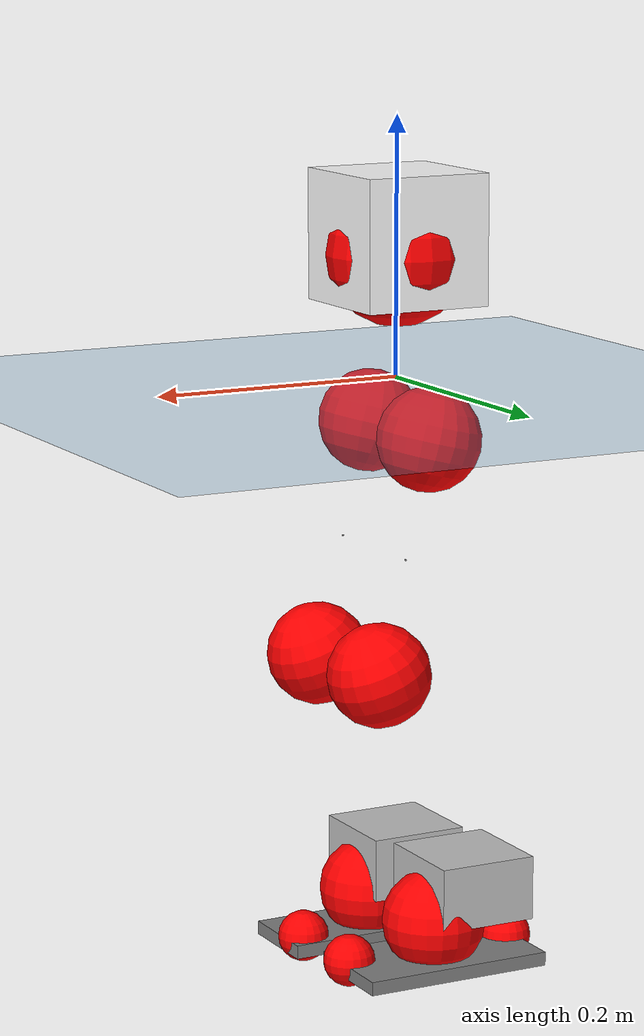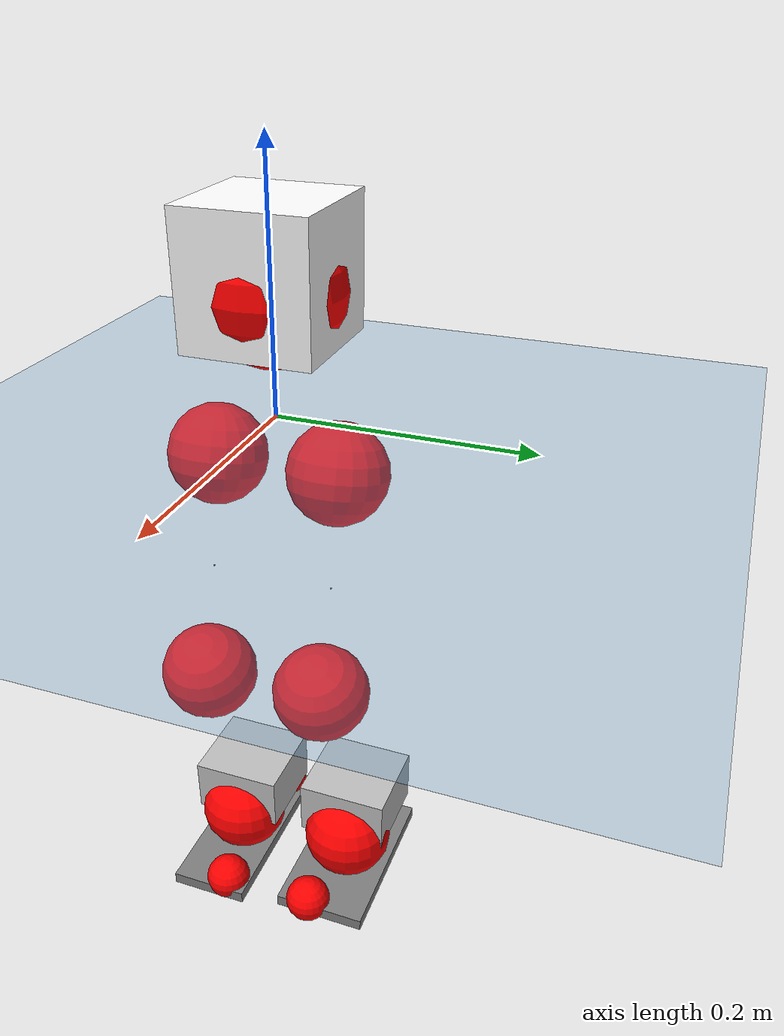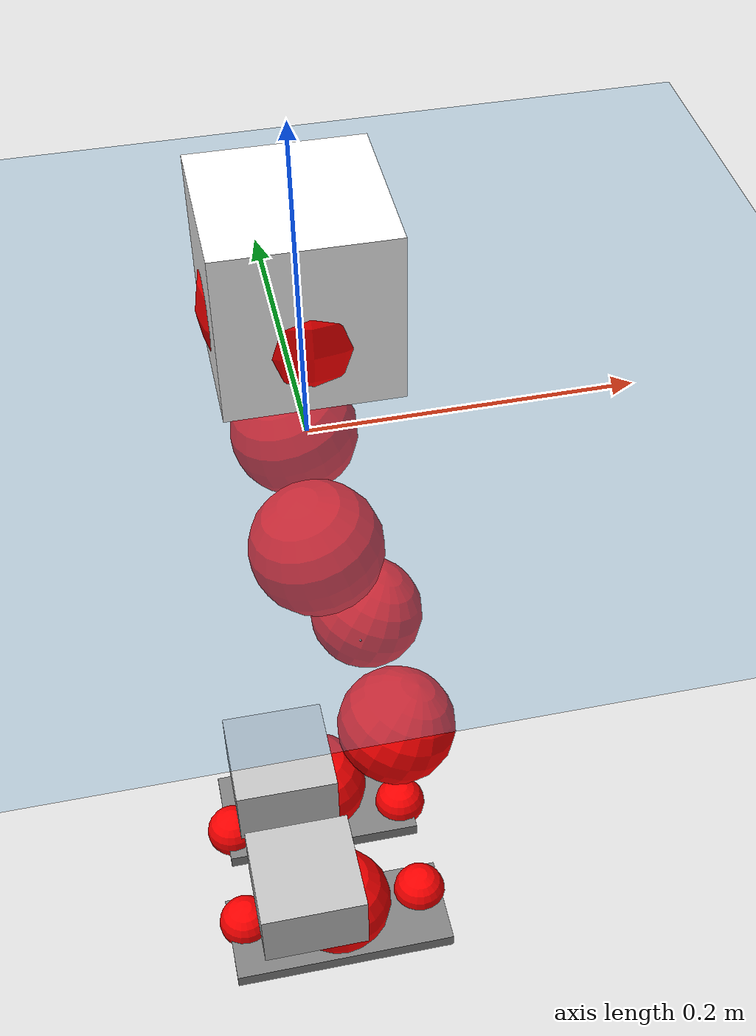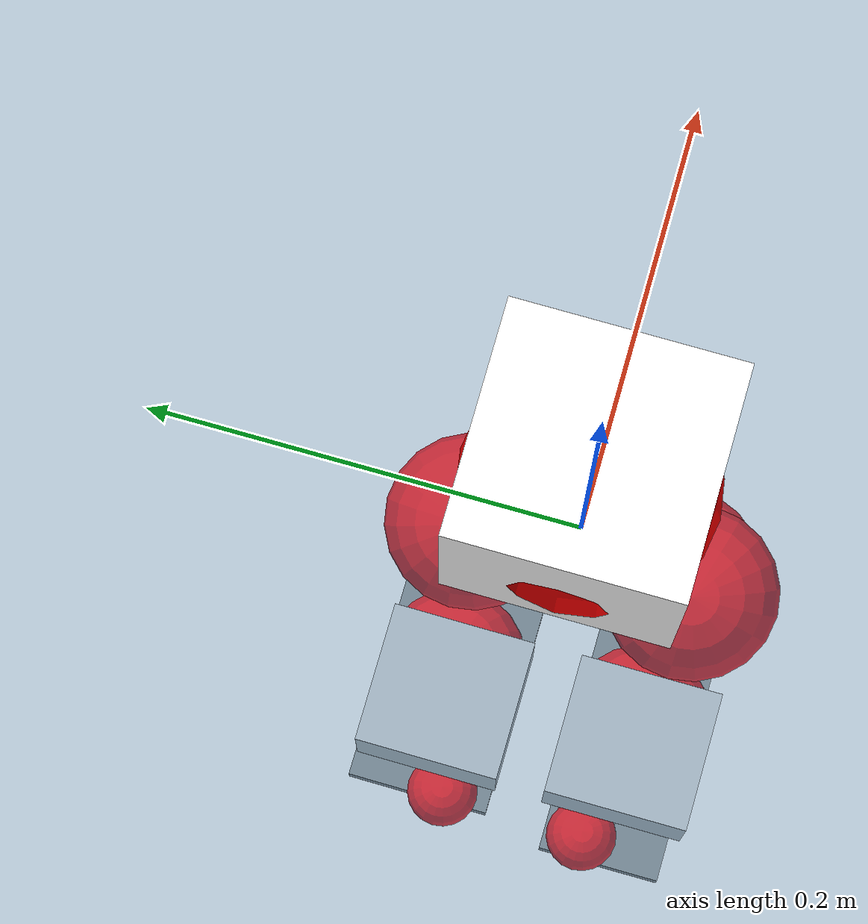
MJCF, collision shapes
<mujoco model="pi_12dof_release_v1">
  <compiler angle="radian" assetdir="assets" balanceinertia="true" inertiafromgeom="false"/>

  <option timestep="0.005" density="1.2" viscosity="2e-05"/>

  <size nkey="1"/>

  <visual>
    <quality shadowsize="8192"/>
    <map shadowclip="0.5"/>
  </visual>

  <default>
    <default class="/">
      <joint armature="0.01" damping="0.01" frictionloss="0.01"/>
      <geom contype="0" conaffinity="0" group="1" solref="-1000 -80"/>
      <site size="0.01 0.005 0.005" group="5"/>
      <general forcelimited="true" biastype="affine" gainprm="20" biasprm="0 -20 -0.5"/>
      <default class="foot">
        <geom size="0.0845 0.036 0.005" type="box" condim="6" group="4" priority="1" friction="0.9 0.2 0.2" solimp="0.015 1 0.005"/>
      </default>
      <default class="reward_collision_sphere">
        <geom group="5" rgba="1 0 0 1"/>
      </default>
    </default>
  </default>

  <asset>
    <texture type="skybox" colorspace="auto" name="//unnamed_texture_0" builtin="gradient" rgb1="0.95 0.95 0.95" rgb2="0.95 0.95 0.95" width="100" height="600"/>
    <texture type="2d" colorspace="auto" name="texplane" builtin="checker" rgb1="0.345 0.575 0.748" rgb2="0.345 0.575 0.748" markrgb="1 1 1" width="512" height="512"/>
    <material name="MatPlane" class="/" texture="texplane" texuniform="true" texrepeat="2 2" specular="0.9"/>
    <mesh name="baselink_1" class="/" file="baselink_1.STL"/>
    <mesh name="r_hip_pitch_link" class="/" file="r_hip_pitch_link.STL"/>
    <mesh name="r_hip_roll_link" class="/" file="r_hip_roll_link.STL"/>
    <mesh name="r_thigh_link" class="/" file="r_thigh_link.STL"/>
    <mesh name="r_calf_link" class="/" file="r_calf_link.STL"/>
    <mesh name="r_ankle_pitch_link" class="/" file="r_ankle_pitch_link.STL"/>
    <mesh name="r_ankle_roll_link" class="/" file="r_ankle_roll_link.STL"/>
    <mesh name="l_hip_pitch_link" class="/" file="l_hip_pitch_link.STL"/>
    <mesh name="l_hip_roll_link" class="/" file="l_hip_roll_link.STL"/>
    <mesh name="l_thigh_link" class="/" file="l_thigh_link.STL"/>
    <mesh name="l_calf_link" class="/" file="l_calf_link.STL"/>
    <mesh name="l_ankle_pitch_link" class="/" file="l_ankle_pitch_link.STL"/>
    <mesh name="l_ankle_roll_link" class="/" file="l_ankle_roll_link.STL"/>
  </asset>

  <worldbody>
    <geom name="floor" class="/" size="100 100 0.125" type="plane" group="0" material="MatPlane"/>
    <light name="toplight_shadow" class="/" pos="0 0 5" dir="0.0990148 0.0990148 -0.990148" type="directional" ambient="0.04 0.04 0.04" diffuse="0.55 0.55 0.55" specular="0.12 0.12 0.12"/>
    <light name="toplight_fill" class="/" pos="0 0 5" dir="0.0990148 0.0990148 -0.990148" type="directional" castshadow="false" ambient="0.04 0.04 0.04" diffuse="0.3 0.3 0.3" specular="0.08 0.08 0.08"/>
    <body name="trunk" pos="-0.000936073 0.000211806 0.00184948" quat="0.999999 0.000343231 0.00082747 -0.000846647">
      <inertial pos="0.00210437 -0.00199376 0.0512293" quat="0.697045 0.00967339 0.0093141 0.716902" mass="2.21838" diaginertia="0.0109509 0.00126081 0.0167214"/>
      <joint name="//unnamed_joint_0" type="free"/>
      <geom name="//unnamed_geom_1" class="/" type="mesh" density="0" rgba="1 1 1 1" mesh="baselink_1"/>
      <geom name="//unnamed_geom_2" class="/" size="0.0504067 0.0504067 0.0504067" pos="0 0 0.105905" type="box" rgba="1 1 1 1"/>
      <geom name="//unnamed_geom_3" class="reward_collision_sphere" size="0.0554474" pos="0 0 0.092667"/>
      <site name="imu" class="/" pos="0.00746587 -0.000519153 -0.00760571" size="0.0100813"/>
      <camera name="track" class="/" pos="0 -1.35276 0" quat="0.707107 0.707107 0 0" mode="trackcom"/>
      <camera name="ego_camera" class="/" pos="0.0768157 0 0.238287" quat="-0.5 -0.5 0.5 0.5"/>
      <body name="r_hip_pitch_link" pos="-0.00197457 -0.0180079 -0.0460343" quat="0.992191 2.90805e-05 -0.124725 5.93833e-05">
        <inertial pos="0.000780999 -0.0407047 -0.000182771" quat="-0.0183227 0.706019 -0.0296385 0.707335" mass="0.390211" diaginertia="0.000121973 1.34078e-05 0.000336032"/>
        <joint name="r_hip_pitch_joint" class="/" pos="0 0 0" axis="0.00549504 -0.999976 0.00416871" stiffness="0.0099232" range="-1.77232 1.22705" armature="0.00907497" damping="0.0137738" frictionloss="0.00890417"/>
        <geom name="//unnamed_geom_4" class="/" type="mesh" density="0" rgba="0.75294 0.75294 0.75294 1" mesh="r_hip_pitch_link"/>
        <geom name="//unnamed_geom_5" class="/" size="0.000504067 0.000504067 0.000504067" type="box" rgba="0.75294 0.75294 0.75294 1"/>
        <body name="r_hip_roll_link" pos="-0.00254222 -0.0370932 0.00255942" quat="1 -0.000171121 0.000701723 0.000594621">
          <inertial pos="-0.00298746 -0.000414481 -0.0785547" quat="0.714133 -0.0734607 -0.0831568 0.691161" mass="0.389265" diaginertia="0.000382892 3.94935e-05 0.000538298"/>
          <joint name="r_hip_roll_joint" class="/" pos="0 0 0" axis="-0.999905 0.0077215 0.0114578" stiffness="0.00180125" range="-0.136108 0.49554" armature="0.00864409" damping="0.00670474" frictionloss="0.010717"/>
          <geom name="//unnamed_geom_6" class="/" type="mesh" density="0" rgba="0.75294 0.75294 0.75294 1" mesh="r_hip_roll_link"/>
          <geom name="//unnamed_geom_7" class="/" size="0.000504067 0.000504067 0.000504067" type="box" rgba="0.75294 0.75294 0.75294 1"/>
          <geom name="//unnamed_geom_8" class="reward_collision_sphere" size="0.0403254"/>
          <body name="r_thigh_link" pos="0.00154476 0.00190258 -0.0929831" quat="1 0.000289076 0.000234782 2.73221e-05">
            <inertial pos="-0.000502317 0.00146134 -0.0656183" quat="0.737259 0.67561 0.000455634 0.000238598" mass="0.116392" diaginertia="0.000137031 1.32573e-05 0.000236767"/>
            <joint name="r_thigh_joint" class="/" pos="0 0 0" axis="-0.00158748 0.00313136 -0.999994" stiffness="0.00884055" range="-0.35609 0.586556" armature="0.0108481" damping="0" frictionloss="0.0114276"/>
            <geom name="//unnamed_geom_9" class="/" type="mesh" density="0" rgba="0.75294 0.75294 0.75294 1" mesh="r_thigh_link"/>
            <geom name="//unnamed_geom_10" class="/" size="0.000504067 0.000504067 0.000504067" type="box" rgba="0.75294 0.75294 0.75294 1"/>
            <body name="r_calf_link" pos="-0.000711767 0.0005194 -0.0946154" quat="0.947619 -4.45179e-05 0.319404 -7.99317e-05">
              <inertial pos="-0.00328127 -0.00106288 -0.0952691" quat="0.999995 -0.00135136 0.00227281 0.00150814" mass="0.841847" diaginertia="0.00383392 0.000503545 0.000684157"/>
              <joint name="r_calf_joint" class="/" pos="0 0 0" axis="0.0121062 -0.999914 -0.00502307" range="-1.64861 0.693616" armature="0.00864275" damping="0.00225567" frictionloss="0.00955824"/>
              <geom name="//unnamed_geom_11" class="/" type="mesh" density="0" rgba="0.75294 0.75294 0.75294 1" mesh="r_calf_link"/>
              <geom name="//unnamed_geom_12" class="/" size="0.000504067 0.000504067 0.000504067" type="box" rgba="0.75294 0.75294 0.75294 1"/>
              <geom name="//unnamed_geom_13" class="reward_collision_sphere" size="0.0403254"/>
              <body name="r_ankle_pitch_link" pos="0.00285772 -0.00195359 -0.187226" quat="0.98025 0.000638087 -0.197759 -0.000119683">
                <inertial pos="0.00647455 0.00146842 -0.00303327" quat="-0.00400341 0.714026 -0.0101585 0.700034" mass="0.185779" diaginertia="0.000334237 3.04818e-05 0.000495649"/>
                <joint name="r_ankle_pitch_joint" class="/" pos="0 0 0" axis="0.00218305 -0.999912 -0.013083" range="-1.25828 0.557224" armature="0.01151" damping="0" frictionloss="0.0105718"/>
                <geom name="//unnamed_geom_14" class="/" type="mesh" density="0" rgba="0.75294 0.75294 0.75294 1" mesh="r_ankle_pitch_link"/>
                <geom name="//unnamed_geom_15" class="/" size="0.0393172 0.0403254 0.0252033" type="box" rgba="0.75294 0.75294 0.75294 1"/>
                <body name="r_ankle_roll_link" pos="0.0747982 -9.26696e-05 0.000248467" quat="0.999999 -0.00132065 -0.000303572 -0.000114257">
                  <inertial pos="-0.0270121 -0.000333522 -0.0197646" quat="0.558966 0.433984 0.435815 0.55613" mass="0.567494" diaginertia="0.00135316 0.000145871 0.00119565"/>
                  <joint name="r_ankle_roll_joint" class="/" pos="0 0 0" axis="-0.999889 0.0132828 0.00667651" range="-0.0954189 0.143458" armature="0.0106983" damping="0.012465" frictionloss="0.010589"/>
                  <geom name="//unnamed_geom_16" class="/" type="mesh" density="0" rgba="0.75294 0.75294 0.75294 1" mesh="r_ankle_roll_link"/>
                  <geom name="//unnamed_geom_17" class="/" type="mesh" rgba="0.75294 0.75294 0.75294 1" mesh="r_ankle_roll_link"/>
                  <geom name="right_foot" class="foot" size="0.0839032 0.0348161 0.00542148" pos="-0.0522347 0 -0.0582478"/>
                  <geom name="//unnamed_geom_19" class="reward_collision_sphere" size="0.0403254" pos="-0.0512105 0 -0.0264763"/>
                  <geom name="//unnamed_geom_20" class="reward_collision_sphere" size="0.0201627" pos="0.0153631 0.0135276 -0.0529526"/>
                  <geom name="//unnamed_geom_21" class="reward_collision_sphere" size="0.0201627" pos="-0.122905 0.0135276 -0.0529526"/>
                  <site name="right_foot" class="foot" pos="-0.0522347 0 -0.0582478" size="0.0100813"/>
                </body>
              </body>
            </body>
          </body>
        </body>
      </body>
      <body name="l_hip_pitch_link" pos="0.00113249 0.0131474 -0.0451171" quat="0.99219 -7.96183e-05 -0.124732 3.60226e-05">
        <inertial pos="0.000483045 0.0390488 -0.00133237" quat="-0.0311763 0.710141 0.0218099 0.703031" mass="0.405042" diaginertia="0.000147263 1.5031e-05 0.000401736"/>
        <joint name="l_hip_pitch_joint" class="/" pos="0 0 0" axis="-0.00267086 0.999994 0.00239325" range="-1.24842 1.75419" armature="0.00968158" damping="0.0260379" frictionloss="0.00866488"/>
        <geom name="//unnamed_geom_22" class="/" type="mesh" density="0" rgba="0.75294 0.75294 0.75294 1" mesh="l_hip_pitch_link"/>
        <geom name="//unnamed_geom_23" class="/" size="0.000504067 0.000504067 0.000504067" type="box" rgba="0.75294 0.75294 0.75294 1"/>
        <body name="l_hip_roll_link" pos="-0.00131864 0.0355285 0.00296346" quat="0.999999 -7.21773e-05 0.000225751 -0.00102636">
          <inertial pos="-0.00249053 0.00175186 -0.0815624" quat="0.699533 -0.07619 -0.0790506 0.706116" mass="0.373534" diaginertia="0.000359465 3.92524e-05 0.000517235"/>
          <joint name="l_hip_roll_joint" class="/" pos="0 0 0" axis="-0.999957 -0.00877448 -0.00312335" range="-0.464685 0.105651" armature="0.00955295" damping="0.0189196" frictionloss="0.0086684"/>
          <geom name="//unnamed_geom_24" class="/" type="mesh" density="0" rgba="0.75294 0.75294 0.75294 1" mesh="l_hip_roll_link"/>
          <geom name="//unnamed_geom_25" class="/" size="0.000504067 0.000504067 0.000504067" type="box" rgba="0.75294 0.75294 0.75294 1"/>
          <geom name="//unnamed_geom_26" class="reward_collision_sphere" size="0.0403254"/>
          <body name="l_thigh_link" pos="-0.00241992 0.00164258 -0.0930661" quat="1 0.000457058 -0.000315189 -0.000198944">
            <inertial pos="0.00289466 0.000861446 -0.0648687" quat="0.676816 0.736018 -0.00190421 0.0139079" mass="0.116252" diaginertia="0.000136341 1.37903e-05 0.00024056"/>
            <joint name="l_thigh_joint" class="/" pos="0 0 0" axis="0.00129306 -0.00283848 -0.999995" range="-0.626452 0.240703" armature="0.0108865" damping="0.00840445" frictionloss="0.010132"/>
            <geom name="//unnamed_geom_27" class="/" type="mesh" density="0" rgba="0.75294 0.75294 0.75294 1" mesh="l_thigh_link"/>
            <geom name="//unnamed_geom_28" class="/" size="0.000504067 0.000504067 0.000504067" type="box" rgba="0.75294 0.75294 0.75294 1"/>
            <body name="l_calf_link" pos="-0.000335327 -0.00114873 -0.0904231" quat="0.94767 -0.000206788 0.31925 -0.000586955">
              <inertial pos="-0.00255599 0.00440624 -0.093399" quat="0.999985 0.00255366 2.33888e-05 0.0049237" mass="0.851695" diaginertia="0.00394355 0.00049263 0.000706347"/>
              <joint name="l_calf_joint" class="/" pos="0 0 0" axis="-0.00429157 0.999925 -0.0115026" stiffness="0.00285334" range="-0.658502 1.69186" armature="0.0103561" damping="0" frictionloss="0.0110969"/>
              <geom name="//unnamed_geom_29" class="/" type="mesh" density="0" rgba="0.75294 0.75294 0.75294 1" mesh="l_calf_link"/>
              <geom name="//unnamed_geom_30" class="/" size="0.000504067 0.000504067 0.000504067" type="box" rgba="0.75294 0.75294 0.75294 1"/>
              <geom name="//unnamed_geom_31" class="reward_collision_sphere" size="0.0403254"/>
              <body name="l_ankle_pitch_link" pos="0.00060871 0.00312813 -0.18724" quat="0.980164 -0.000919144 -0.198187 -0.000375786">
                <inertial pos="0.00455261 0.0021134 0.000161709" quat="-0.00189753 0.706774 0.00184979 0.707434" mass="0.168146" diaginertia="0.000323562 3.06742e-05 0.000473876"/>
                <joint name="l_ankle_pitch_joint" class="/" pos="0 0 0" axis="-0.0019112 0.999997 0.00172071" range="-0.562828 1.24678" armature="0.00877745" damping="0.00813856" frictionloss="0.0112519"/>
                <geom name="//unnamed_geom_32" class="/" type="mesh" density="0" rgba="0.75294 0.75294 0.75294 1" mesh="l_ankle_pitch_link"/>
                <geom name="//unnamed_geom_33" class="/" size="0.0393172 0.0403254 0.0252033" type="box" rgba="0.75294 0.75294 0.75294 1"/>
                <body name="l_ankle_roll_link" pos="0.0786031 0.002385 -0.000417443" quat="1 0.000236326 0.000564392 -0.000165287">
                  <inertial pos="-0.0224842 -0.00326692 -0.0185222" quat="0.562781 0.429904 0.442754 0.549936" mass="0.531206" diaginertia="0.00123817 0.00014591 0.00111608"/>
                  <joint name="l_ankle_roll_joint" class="/" pos="0 0 0" axis="-0.999993 -0.00367179 3.38342e-05" range="-0.109634 0.0974026" armature="0.0114383" damping="0.0155125" frictionloss="0.0113335"/>
                  <geom name="//unnamed_geom_34" class="/" type="mesh" density="0" rgba="0.75294 0.75294 0.75294 1" mesh="l_ankle_roll_link"/>
                  <geom name="//unnamed_geom_35" class="/" type="mesh" rgba="0.75294 0.75294 0.75294 1" mesh="l_ankle_roll_link"/>
                  <geom name="left_foot" class="foot" size="0.0759142 0.040667 0.00535564" pos="-0.0522347 0 -0.0582478"/>
                  <geom name="//unnamed_geom_37" class="reward_collision_sphere" size="0.0403254" pos="-0.0512105 0 -0.0264763"/>
                  <geom name="//unnamed_geom_38" class="reward_collision_sphere" size="0.0201627" pos="0.0153631 -0.0135276 -0.0529526"/>
                  <geom name="//unnamed_geom_39" class="reward_collision_sphere" size="0.0201627" pos="-0.122905 -0.0135276 -0.0529526"/>
                  <site name="left_foot" class="foot" pos="-0.0522347 0 -0.0582478" size="0.0100813"/>
                </body>
              </body>
            </body>
          </body>
        </body>
      </body>
    </body>
  </worldbody>

  <contact>
    <pair class="/" geom1="floor" geom2="right_foot" name="//unnamed_contact_1"/>
    <pair class="/" geom1="floor" geom2="left_foot" name="//unnamed_contact_0"/>
  </contact>

  <actuator>
    <general name="r_hip_pitch_joint" class="/" joint="r_hip_pitch_joint" forcerange="-23.1435 23.1435" gainprm="20.1135" biasprm="0 -20.1135 -0.477161"/>
    <general name="r_hip_roll_joint" class="/" joint="r_hip_roll_joint" forcerange="-21.3602 21.3602" gainprm="20.1135" biasprm="0 -20.1135 -0.477161"/>
    <general name="r_thigh_joint" class="/" joint="r_thigh_joint" forcerange="-20.3477 20.3477" gainprm="20.1135" biasprm="0 -20.1135 -0.477161"/>
    <general name="r_calf_joint" class="/" joint="r_calf_joint" forcerange="-22.4524 22.4524" gainprm="20.1135" biasprm="0 -20.1135 -0.477161"/>
    <general name="r_ankle_pitch_joint" class="/" joint="r_ankle_pitch_joint" forcerange="-20.9721 20.9721" gainprm="20.1135" biasprm="0 -20.1135 -0.477161"/>
    <general name="r_ankle_roll_joint" class="/" joint="r_ankle_roll_joint" forcerange="-21.8636 21.8636" gainprm="20.1135" biasprm="0 -20.1135 -0.477161"/>
    <general name="l_hip_pitch_joint" class="/" joint="l_hip_pitch_joint" forcerange="-19.1606 19.1606" gainprm="20.1135" biasprm="0 -20.1135 -0.477161"/>
    <general name="l_hip_roll_joint" class="/" joint="l_hip_roll_joint" forcerange="-20.2386 20.2386" gainprm="20.1135" biasprm="0 -20.1135 -0.477161"/>
    <general name="l_thigh_joint" class="/" joint="l_thigh_joint" forcerange="-19.7674 19.7674" gainprm="20.1135" biasprm="0 -20.1135 -0.477161"/>
    <general name="l_calf_joint" class="/" joint="l_calf_joint" forcerange="-20.9026 20.9026" gainprm="20.1135" biasprm="0 -20.1135 -0.477161"/>
    <general name="l_ankle_pitch_joint" class="/" joint="l_ankle_pitch_joint" forcerange="-23.335 23.335" gainprm="20.1135" biasprm="0 -20.1135 -0.477161"/>
    <general name="l_ankle_roll_joint" class="/" joint="l_ankle_roll_joint" forcerange="-20.9602 20.9602" gainprm="20.1135" biasprm="0 -20.1135 -0.477161"/>
  </actuator>

  <sensor>
    <gyro site="imu" name="imu_angular_velocity"/>
    <velocimeter site="imu" name="imu_linear_velocity"/>
    <framelinvel objtype="site" objname="left_foot" name="left_foot_global_linear_velocity"/>
    <framelinvel objtype="site" objname="right_foot" name="right_foot_global_linear_velocity"/>
  </sensor>

  <keyframe>
    <key name="home" qpos="0 0 0.291 1 0 0 0 0.4 0 0 -0.8 0.4 0 -0.4 0 0 0.8 -0.4 0"/>
  </keyframe>
</mujoco>
